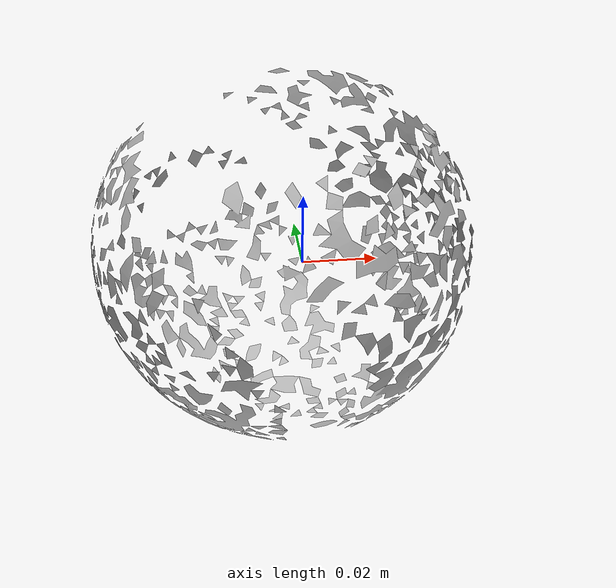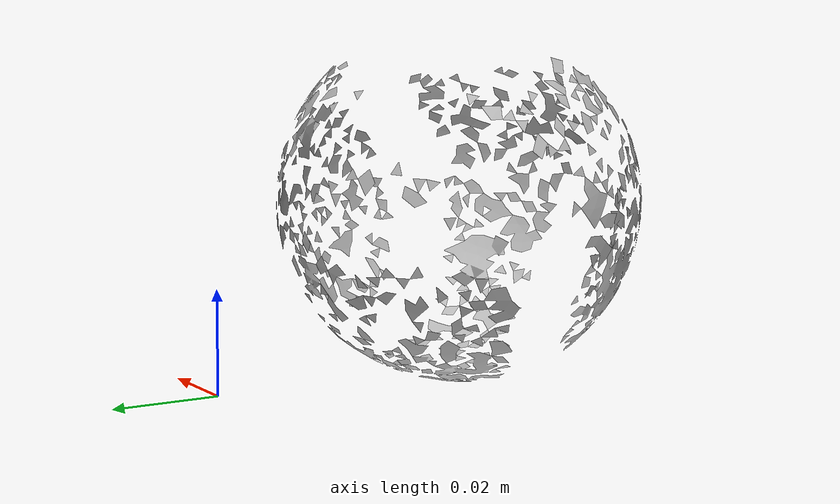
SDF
<?xml version="1.0" ?>
<sdf version="1.4">
  <model name='ycb_055_baseball'>
    <link name='body'>
      <inertial>
        <mass>0.138</mass>
        <pose>-0.00994798497707 -0.0481162357312 0.0359266475531 0 0 0</pose>
        <inertia>
          <ixx>7.32787408589e-05</ixx>
          <ixy>-4.09696067826e-08</ixy>
          <ixz>-1.20502147757e-08</ixz>
          <iyy>7.34638842968e-05</iyy>
          <iyz>-3.09741664184e-07</iyz>
          <izz>7.32633295709e-05</izz>
        </inertia>
      </inertial>
      <visual name='ycb_055_baseball_visual'>
        <pose>0 0 0 0 0 0</pose>
        <geometry>
          <mesh>
            <uri>model://ycb_055_baseball/meshes/textured.dae</uri>
          </mesh>
        </geometry>
      </visual>
      <collision name='ycb_055_baseball_collision'>
        <pose>0 0 0 0 0 0</pose>
        <geometry>
          <mesh>
            <uri>model://ycb_055_baseball/meshes/nontextured.stl</uri>
          </mesh>
        </geometry>
        <max_contacts>10</max_contacts>
      </collision>
    </link>
  </model>
</sdf>
